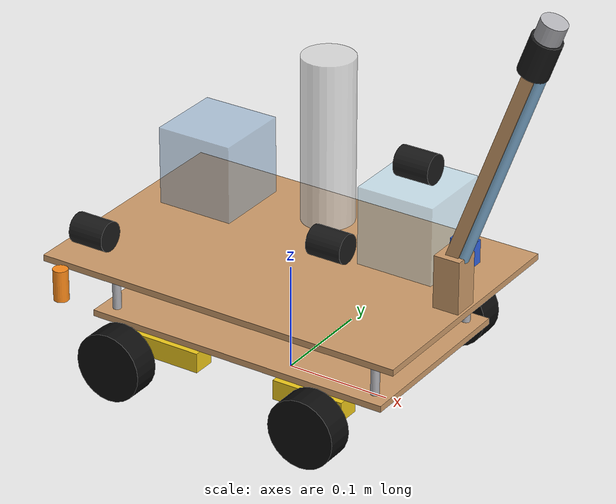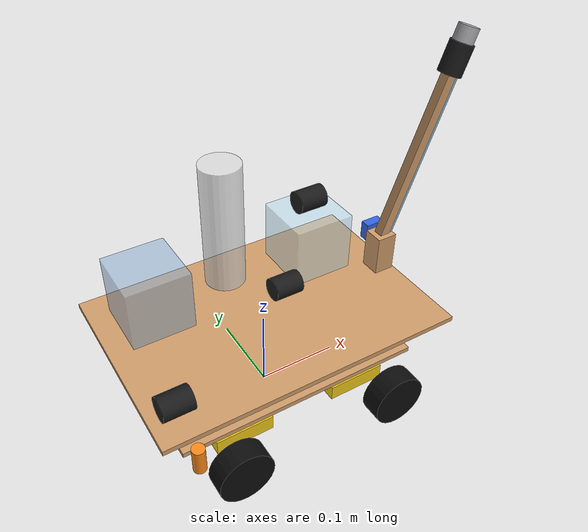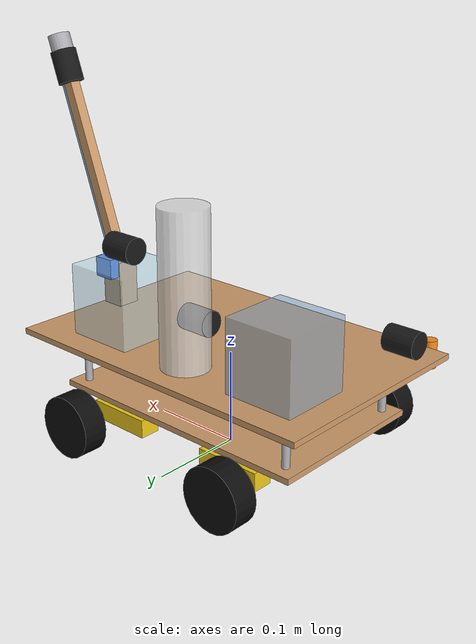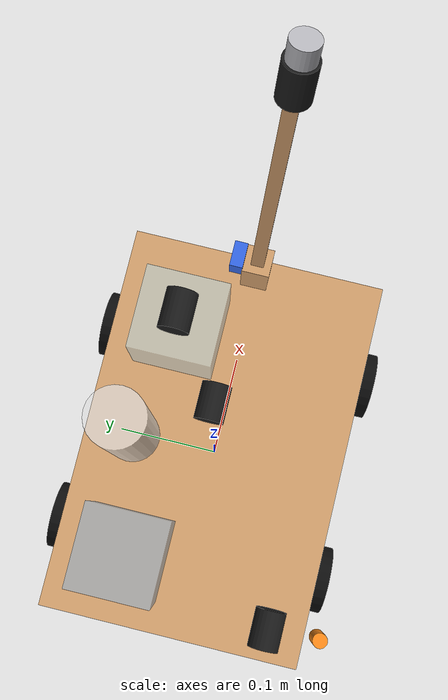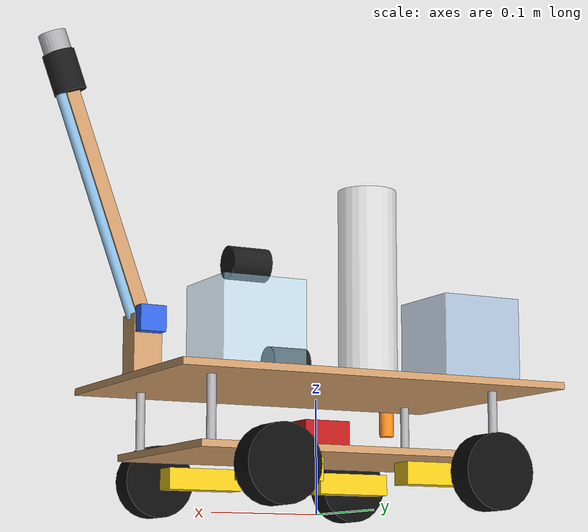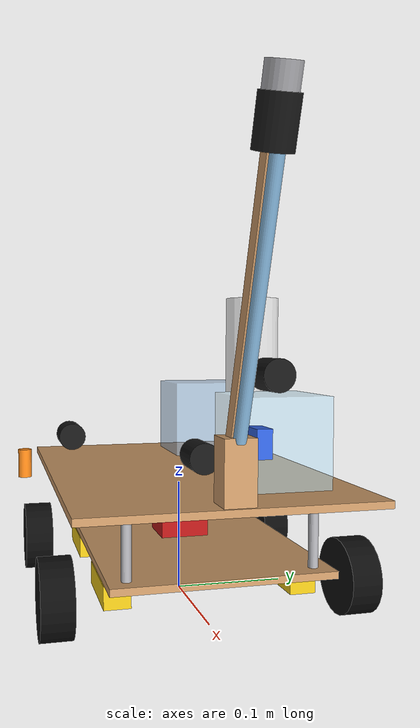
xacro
<?xml version="1.0"?>
<robot name="waterdroid" xmlns:xacro="http://www.ros.org/wiki/xacro">

  <!-- ===================== Dimensions (metres / kg) ===================== -->
  <xacro:property name="PI" value="3.14159265"/>

  <xacro:property name="wheel_radius" value="0.0325"/>   <!-- 65 mm tyre -->
  <xacro:property name="wheel_width"  value="0.026"/>
  <xacro:property name="wheel_mass"   value="0.05"/>
  <xacro:property name="wheel_base"   value="0.20"/>     <!-- front-rear axle distance -->
  <xacro:property name="wheel_track"  value="0.25"/>     <!-- left-right wheel centres -->

  <xacro:property name="lower_l" value="0.30"/>
  <xacro:property name="lower_w" value="0.18"/>
  <xacro:property name="upper_l" value="0.36"/>
  <xacro:property name="upper_w" value="0.24"/>
  <xacro:property name="deck_t"  value="0.006"/>
  <xacro:property name="deck_gap" value="0.060"/>        <!-- standoff height -->

  <!-- base_link = centre of the lower deck -->
  <xacro:property name="base_z" value="0.050"/>          <!-- lower deck height above ground -->
  <xacro:property name="upper_z" value="${deck_gap}"/>   <!-- upper deck relative to base_link -->
  <xacro:property name="top" value="${upper_z + deck_t/2}"/>  <!-- top surface of upper deck -->

  <xacro:property name="tank_size" value="0.075"/>       <!-- ~420 mL cube: 400 mL tanks -->
  <xacro:property name="water_mass" value="0.3"/>        <!-- tank + up to 400 mL water -->

  <!-- ===================== Materials ===================== -->
  <material name="wood"><color rgba="0.82 0.62 0.42 1"/></material>
  <material name="black"><color rgba="0.05 0.05 0.05 1"/></material>
  <material name="yellow"><color rgba="0.95 0.80 0.10 1"/></material>
  <material name="raw_water"><color rgba="0.55 0.70 0.85 0.55"/></material>
  <material name="clean_water"><color rgba="0.70 0.90 1.00 0.45"/></material>
  <material name="filter"><color rgba="0.90 0.90 0.90 0.70"/></material>
  <material name="hose"><color rgba="0.55 0.75 0.90 1"/></material>
  <material name="pcb_blue"><color rgba="0.10 0.25 0.70 1"/></material>
  <material name="pcb_red"><color rgba="0.75 0.10 0.10 1"/></material>
  <material name="pcb_dark"><color rgba="0.10 0.10 0.10 1"/></material>
  <material name="servo_blue"><color rgba="0.20 0.40 0.90 1"/></material>
  <material name="nozzle"><color rgba="1.00 0.55 0.10 1"/></material>
  <material name="metal"><color rgba="0.70 0.70 0.72 1"/></material>

  <!-- ===================== Macros ===================== -->
  <xacro:macro name="box_inertia" params="m x y z">
    <inertial>
      <mass value="${m}"/>
      <origin xyz="0 0 0"/>
      <inertia ixx="${m*(y*y+z*z)/12}" ixy="0" ixz="0"
               iyy="${m*(x*x+z*z)/12}" iyz="0"
               izz="${m*(x*x+y*y)/12}"/>
    </inertial>
  </xacro:macro>

  <xacro:macro name="cyl_inertia" params="m r h">
    <inertial>
      <mass value="${m}"/>
      <origin xyz="0 0 0"/>
      <inertia ixx="${m*(3*r*r+h*h)/12}" ixy="0" ixz="0"
               iyy="${m*(3*r*r+h*h)/12}" iyz="0"
               izz="${m*r*r/2}"/>
    </inertial>
  </xacro:macro>

  <!-- Fixed box-shaped component on the chassis (visual + light inertia) -->
  <xacro:macro name="deck_box" params="name parent x y z sx sy sz mat mass:=0.02 collide:=false">
    <link name="${name}">
      <visual><geometry><box size="${sx} ${sy} ${sz}"/></geometry><material name="${mat}"/></visual>
      <xacro:if value="${collide}">
        <collision><geometry><box size="${sx} ${sy} ${sz}"/></geometry></collision>
      </xacro:if>
      <xacro:box_inertia m="${mass}" x="${sx}" y="${sy}" z="${sz}"/>
    </link>
    <joint name="${name}_joint" type="fixed">
      <parent link="${parent}"/><child link="${name}"/>
      <origin xyz="${x} ${y} ${z}" rpy="0 0 0"/>
    </joint>
  </xacro:macro>

  <!-- 5 V pump (small cylinder body + motor can) -->
  <xacro:macro name="pump" params="name parent x y z">
    <link name="${name}">
      <visual><geometry><cylinder radius="0.014" length="0.035"/></geometry><material name="pcb_dark"/></visual>
      <xacro:cyl_inertia m="0.03" r="0.014" h="0.035"/>
    </link>
    <joint name="${name}_joint" type="fixed">
      <parent link="${parent}"/><child link="${name}"/>
      <origin xyz="${x} ${y} ${z}" rpy="0 ${PI/2} 0"/>
    </joint>
  </xacro:macro>

  <!-- TT geared motor + 65 mm wheel -->
  <xacro:macro name="wheel" params="prefix x y">
    <link name="${prefix}_motor">
      <visual><geometry><box size="0.070 0.022 0.019"/></geometry><material name="yellow"/></visual>
      <xacro:box_inertia m="0.03" x="0.070" y="0.022" z="0.019"/>
    </link>
    <joint name="${prefix}_motor_joint" type="fixed">
      <parent link="base_link"/><child link="${prefix}_motor"/>
      <origin xyz="${x*0.75} ${y*0.62} ${wheel_radius - base_z}" rpy="0 0 0"/>
    </joint>

    <link name="${prefix}_wheel">
      <visual><geometry><cylinder radius="${wheel_radius}" length="${wheel_width}"/></geometry><material name="black"/></visual>
      <collision><geometry><cylinder radius="${wheel_radius}" length="${wheel_width}"/></geometry></collision>
      <xacro:cyl_inertia m="${wheel_mass}" r="${wheel_radius}" h="${wheel_width}"/>
    </link>
    <joint name="${prefix}_wheel_joint" type="continuous">
      <parent link="base_link"/><child link="${prefix}_wheel"/>
      <origin xyz="${x} ${y} ${wheel_radius - base_z}" rpy="${-PI/2} 0 0"/>
      <axis xyz="0 0 1"/>
      <dynamics damping="0.01" friction="0.01"/>
    </joint>

    <gazebo reference="${prefix}_wheel">
      <mu1>0.35</mu1><mu2>1.0</mu2>
      <kp>1e6</kp><kd>100</kd>
      <fdir1>0 0 1</fdir1>
    </gazebo>
  </xacro:macro>

  <!-- ===================== Chassis ===================== -->
  <link name="base_footprint"/>

  <joint name="base_joint" type="fixed">
    <parent link="base_footprint"/><child link="base_link"/>
    <origin xyz="0 0 ${base_z}" rpy="0 0 0"/>
  </joint>

  <!-- Lower deck (wheels, motors, L298N) -->
  <link name="base_link">
    <visual><geometry><box size="${lower_l} ${lower_w} ${deck_t}"/></geometry><material name="wood"/></visual>
    <collision><geometry><box size="${lower_l} ${lower_w} ${deck_t}"/></geometry></collision>
    <xacro:box_inertia m="0.35" x="${lower_l}" y="${lower_w}" z="${deck_t}"/>
  </link>

  <!-- Upper deck (tanks, filter, electronics, arm) -->
  <link name="upper_deck">
    <visual><geometry><box size="${upper_l} ${upper_w} ${deck_t}"/></geometry><material name="wood"/></visual>
    <collision><geometry><box size="${upper_l} ${upper_w} ${deck_t}"/></geometry></collision>
    <xacro:box_inertia m="0.40" x="${upper_l}" y="${upper_w}" z="${deck_t}"/>
  </link>
  <joint name="upper_deck_joint" type="fixed">
    <parent link="base_link"/><child link="upper_deck"/>
    <origin xyz="0 0 ${upper_z}" rpy="0 0 0"/>
  </joint>

  <!-- Standoffs -->
  <xacro:macro name="standoff" params="n x y">
    <link name="standoff_${n}">
      <visual><geometry><cylinder radius="0.004" length="${deck_gap}"/></geometry><material name="metal"/></visual>
      <xacro:cyl_inertia m="0.005" r="0.004" h="${deck_gap}"/>
    </link>
    <joint name="standoff_${n}_joint" type="fixed">
      <parent link="base_link"/><child link="standoff_${n}"/>
      <origin xyz="${x} ${y} ${deck_gap/2}" rpy="0 0 0"/>
    </joint>
  </xacro:macro>
  <xacro:standoff n="1" x="${ lower_l/2-0.015}" y="${ lower_w/2-0.015}"/>
  <xacro:standoff n="2" x="${ lower_l/2-0.015}" y="${-lower_w/2+0.015}"/>
  <xacro:standoff n="3" x="${-lower_l/2+0.015}" y="${ lower_w/2-0.015}"/>
  <xacro:standoff n="4" x="${-lower_l/2+0.015}" y="${-lower_w/2+0.015}"/>

  <!-- ===================== Drive train (4WD) ===================== -->
  <xacro:wheel prefix="front_left"  x="${ wheel_base/2}" y="${ wheel_track/2}"/>
  <xacro:wheel prefix="front_right" x="${ wheel_base/2}" y="${-wheel_track/2}"/>
  <xacro:wheel prefix="rear_left"   x="${-wheel_base/2}" y="${ wheel_track/2}"/>
  <xacro:wheel prefix="rear_right"  x="${-wheel_base/2}" y="${-wheel_track/2}"/>

  <!-- L298N dual H-bridge on the lower deck -->
  <xacro:deck_box name="l298n_driver" parent="base_link" x="0.0" y="0.0" z="${deck_t/2 + 0.014}"
                  sx="0.043" sy="0.043" sz="0.027" mat="pcb_red" mass="0.03"/>

  <!-- ===================== Treatment train (upper deck) ===================== -->
  <!-- Stage 1: raw water tank (rear-left) -->
  <xacro:deck_box name="stage1_raw_tank" parent="upper_deck"
                  x="-0.115" y="0.055" z="${deck_t/2 + tank_size/2}"
                  sx="${tank_size}" sy="${tank_size}" sz="${tank_size}"
                  mat="raw_water" mass="${water_mass}" collide="true"/>

  <!-- Stage 2: gravity-fed filtration column (centre, tall) -->
  <link name="stage2_filter_column">
    <visual><geometry><cylinder radius="0.025" length="0.16"/></geometry><material name="filter"/></visual>
    <collision><geometry><cylinder radius="0.025" length="0.16"/></geometry></collision>
    <xacro:cyl_inertia m="0.25" r="0.025" h="0.16"/>
  </link>
  <joint name="stage2_filter_column_joint" type="fixed">
    <parent link="upper_deck"/><child link="stage2_filter_column"/>
    <origin xyz="-0.01 0.075 ${deck_t/2 + 0.08}" rpy="0 0 0"/>
  </joint>

  <!-- Stage 3: disinfection & clean tank (front-left) -->
  <xacro:deck_box name="stage3_clean_tank" parent="upper_deck"
                  x="0.095" y="0.055" z="${deck_t/2 + tank_size/2}"
                  sx="${tank_size}" sy="${tank_size}" sz="${tank_size}"
                  mat="clean_water" mass="${water_mass}" collide="true"/>

  <!-- Pumps -->
  <!-- transfer pump (relay CH2, was the alum pump): filtration column -> Stage 3 delivery tank -->
  <xacro:pump name="transfer_pump"        parent="upper_deck"        x="0.035" y="0.010" z="${deck_t/2 + 0.016}"/>
  <xacro:pump name="chlorine_dosing_pump" parent="stage3_clean_tank" x="0.0"  y="0.0"  z="${tank_size/2 + 0.016}"/>
  <xacro:pump name="delivery_pump"        parent="upper_deck"        x="-0.150" y="-0.085" z="${deck_t/2 + 0.016}"/>

  <!-- Fixed delivery outlet: nozzle over the right-hand side, the homestead container goes under it -->
  <link name="delivery_nozzle">
    <visual>
      <geometry><cylinder radius="0.007" length="0.030"/></geometry>
      <material name="nozzle"/>
    </visual>
    <xacro:cyl_inertia m="0.004" r="0.007" h="0.030"/>
  </link>
  <joint name="delivery_nozzle_joint" type="fixed">
    <parent link="upper_deck"/><child link="delivery_nozzle"/>
    <origin xyz="-0.150 -0.135 -0.010" rpy="0 0 0"/>
  </joint>

  <!-- ===================== Servo-driven intake (SG90) ===================== -->
  <!-- The SG90 swings the intake boom (hose + coarse pre-filter + submersible pump) from stowed (0 deg,
       standing almost upright) to deployed (90 deg, reaching forward and down into the river). -->
  <link name="intake_mount">
    <visual><geometry><box size="0.025 0.025 0.050"/></geometry><material name="wood"/></visual>
    <xacro:box_inertia m="0.02" x="0.025" y="0.025" z="0.050"/>
  </link>
  <joint name="intake_mount_joint" type="fixed">
    <parent link="upper_deck"/><child link="intake_mount"/>
    <origin xyz="0.165 0.0 ${deck_t/2 + 0.025}" rpy="0 0 0"/>
  </joint>

  <link name="sg90_servo">
    <visual><geometry><box size="0.023 0.012 0.022"/></geometry><material name="servo_blue"/></visual>
    <xacro:box_inertia m="0.009" x="0.023" y="0.012" z="0.022"/>
  </link>
  <joint name="sg90_servo_joint" type="fixed">
    <parent link="intake_mount"/><child link="sg90_servo"/>
    <origin xyz="0 0.018 0.020" rpy="0 0 0"/>
  </joint>

  <!-- Boom pitches about Y. Stowed it stands 20 deg forward of vertical; 90 deg of servo travel ends 20 deg below horizontal. -->
  <xacro:property name="boom_len" value="0.20"/>
  <xacro:property name="boom_lean" value="0.349"/>
  <link name="intake_arm">
    <visual>
      <origin xyz="${boom_len/2*sin(boom_lean)} 0 ${boom_len/2*cos(boom_lean)}" rpy="0 ${boom_lean} 0"/>
      <geometry><box size="0.012 0.012 ${boom_len}"/></geometry>
      <material name="wood"/>
    </visual>
    <visual>
      <origin xyz="${boom_len/2*sin(boom_lean) + 0.009} 0 ${boom_len/2*cos(boom_lean)}" rpy="0 ${boom_lean} 0"/>
      <geometry><cylinder radius="0.005" length="${boom_len}"/></geometry>
      <material name="hose"/>
    </visual>
    <inertial>
      <mass value="0.03"/>
      <origin xyz="${boom_len/2*sin(boom_lean)} 0 ${boom_len/2*cos(boom_lean)}"/>
      <inertia ixx="0.0001" ixy="0" ixz="0" iyy="0.0001" iyz="0" izz="0.000005"/>
    </inertial>
  </link>
  <joint name="arm_servo_joint" type="revolute">
    <parent link="intake_mount"/><child link="intake_arm"/>
    <origin xyz="0 0 0.022" rpy="0 0 0"/>
    <axis xyz="0 1 0"/>
    <limit lower="0.0" upper="${PI/2}" effort="0.18" velocity="5.2"/>  <!-- SG90: 1.8 kg.cm, 0.1 s/60deg -->
    <dynamics damping="0.002" friction="0.0"/>
  </joint>

  <!-- Submersible intake pump with the coarse mesh pre-filter at the boom tip -->
  <link name="intake_pump">
    <visual>
      <geometry><cylinder radius="0.014" length="0.035"/></geometry>
      <material name="pcb_dark"/>
    </visual>
    <visual>
      <origin xyz="0 0 0.026" rpy="0 0 0"/>
      <geometry><cylinder radius="0.012" length="0.018"/></geometry>
      <material name="metal"/>
    </visual>
    <xacro:cyl_inertia m="0.04" r="0.014" h="0.035"/>
  </link>
  <joint name="intake_pump_joint" type="fixed">
    <parent link="intake_arm"/><child link="intake_pump"/>
    <origin xyz="${(boom_len + 0.018)*sin(boom_lean)} 0 ${(boom_len + 0.018)*cos(boom_lean)}" rpy="0 ${boom_lean} 0"/>
  </joint>

  <!-- ===================== Gazebo systems ===================== -->
  <gazebo>
    <!-- Skid-steer drive: both wheels on each side are driven together, like the L298N channels A/B -->
    <plugin filename="gz-sim-diff-drive-system" name="gz::sim::systems::DiffDrive">
      <left_joint>front_left_wheel_joint</left_joint>
      <left_joint>rear_left_wheel_joint</left_joint>
      <right_joint>front_right_wheel_joint</right_joint>
      <right_joint>rear_right_wheel_joint</right_joint>
      <wheel_separation>${wheel_track}</wheel_separation>
      <wheel_radius>${wheel_radius}</wheel_radius>
      <!-- TT motor ~200 rpm under load -> ~0.68 m/s top speed with 65 mm wheels -->
      <max_linear_velocity>0.6</max_linear_velocity>
      <min_linear_velocity>-0.6</min_linear_velocity>
      <max_angular_velocity>3.0</max_angular_velocity>
      <min_angular_velocity>-3.0</min_angular_velocity>
      <max_linear_acceleration>1.5</max_linear_acceleration>
      <min_linear_acceleration>-1.5</min_linear_acceleration>
      <max_angular_acceleration>6.0</max_angular_acceleration>
      <min_angular_acceleration>-6.0</min_angular_acceleration>
      <odom_publish_frequency>50</odom_publish_frequency>
      <topic>cmd_vel</topic>
      <odom_topic>odom</odom_topic>
      <tf_topic>tf</tf_topic>
      <frame_id>odom</frame_id>
      <child_frame_id>base_footprint</child_frame_id>
    </plugin>

    <!-- Ground-truth pose (used by mission_navigator_gt because skid-steer wheel odom drifts) -->
    <plugin filename="gz-sim-odometry-publisher-system" name="gz::sim::systems::OdometryPublisher">
      <odom_frame>odom_gt</odom_frame>
      <robot_base_frame>base_footprint</robot_base_frame>
      <odom_topic>ground_truth/odom</odom_topic>
      <tf_topic>ground_truth/tf</tf_topic>
      <odom_publish_frequency>50</odom_publish_frequency>
      <dimensions>3</dimensions>
    </plugin>

    <plugin filename="gz-sim-joint-state-publisher-system" name="gz::sim::systems::JointStatePublisher">
      <topic>joint_states</topic>
    </plugin>

    <!-- SG90 servo on the intake boom: position controlled, angle in radians -->
    <plugin filename="gz-sim-joint-position-controller-system" name="gz::sim::systems::JointPositionController">
      <joint_name>arm_servo_joint</joint_name>
      <topic>arm_servo/cmd_pos</topic>
      <p_gain>2.0</p_gain>
      <i_gain>0.05</i_gain>
      <d_gain>0.05</d_gain>
      <cmd_max>0.18</cmd_max>
      <cmd_min>-0.18</cmd_min>
      <initial_position>0.0</initial_position>
    </plugin>
  </gazebo>

</robot>
